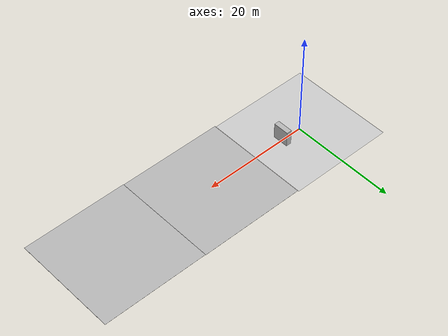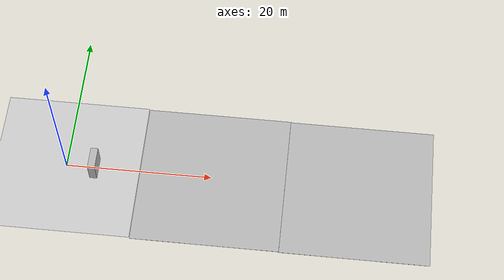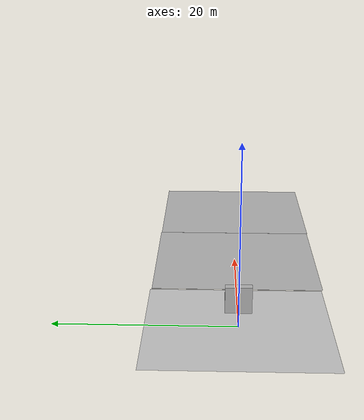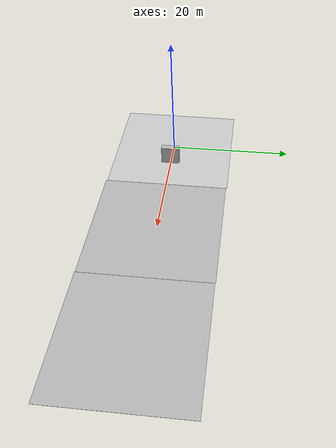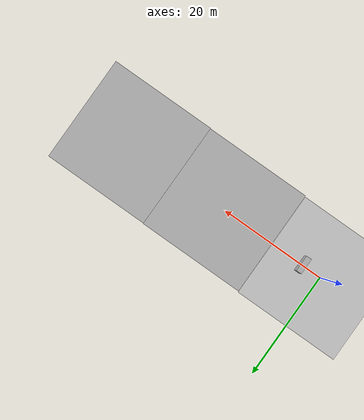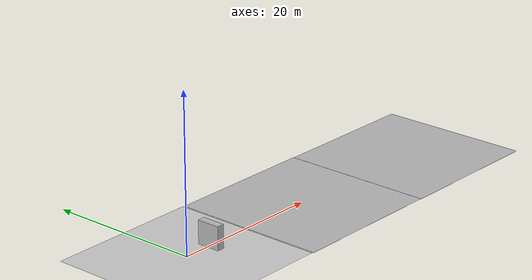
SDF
<sdf version="1.6">
 <world name="default">
  <light name="sun" type="directional">
   <pose>0 0 10 0 -0 0</pose>
   <diffuse>0.8 0.8 0.8 1</diffuse>
   <specular>0.2 0.2 0.2 1</specular>
   <attenuation>
    <range>1000</range>
    <constant>0.9</constant>
    <linear>0.01</linear>
    <quadratic>0.001</quadratic>
   </attenuation>
   <direction>-0.5 0.1 -0.9</direction>
  </light>
  <gravity>0 0 -9.8</gravity>
  <magnetic_field>6e-06 2.3e-05 -4.2e-05</magnetic_field>
  <atmosphere type="adiabatic"/>
  <physics name="default_physics" default="0" type="ode">
   <max_step_size>0.001</max_step_size>
   <real_time_factor>1</real_time_factor>
   <real_time_update_rate>1000</real_time_update_rate>
  </physics>
  <scene><ambient>0.4 0.4 0.4 1</ambient><background>0.7 0.7 0.7 1</background><shadows>1</shadows></scene>
  <audio><device>default</device></audio>
  <spherical_coordinates>
   <surface_model>EARTH_WGS84</surface_model>
   <latitude_deg>0</latitude_deg>
   <longitude_deg>0</longitude_deg>
   <elevation>0</elevation>
   <heading_deg>0</heading_deg>
  </spherical_coordinates>
  <model name="ground20x60">
   <model name="my_ground_plane">
    <static>1</static>
    <link name="link">
     <collision name="collision">
      <geometry><plane><normal>0 0 1</normal><size>20 20</size></plane></geometry>
      <surface><friction><ode><mu>100</mu><mu2>50</mu2></ode></friction></surface>
     </collision>
     <visual name="visual">
      <cast_shadows>0</cast_shadows>
      <geometry><plane><normal>0 0 1</normal><size>20 20</size></plane></geometry>
      <material>
       <script>
        <uri>model://ground20x20/materials/scripts</uri>
        <uri>model://ground20x20/materials/textures</uri>
        <name>WoodGround/Image</name>
       </script>
      </material>
     </visual>
    </link>
    <pose>-20.0603 0.142959 0 0 -0 0</pose>
   </model>
   <model name="my_ground_plane_0">
    <static>1</static>
    <link name="link">
     <collision name="collision">
      <geometry><plane><normal>0 0 1</normal><size>20 20</size></plane></geometry>
      <surface><friction><ode><mu>100</mu><mu2>50</mu2></ode></friction></surface>
     </collision>
     <visual name="visual">
      <cast_shadows>0</cast_shadows>
      <geometry><plane><normal>0 0 1</normal><size>20 20</size></plane></geometry>
      <material>
       <script>
        <uri>model://ground20x20/materials/scripts</uri>
        <uri>model://ground20x20/materials/textures</uri>
        <name>WoodGround/Image</name>
       </script>
      </material>
     </visual>
    </link>
    <pose>0.026452 -0.032681 0 0 -0 0</pose>
   </model>
   <model name="my_ground_plane_1">
    <static>1</static>
    <link name="link">
     <collision name="collision">
      <geometry><plane><normal>0 0 1</normal><size>20 20</size></plane></geometry>
      <surface><friction><ode><mu>100</mu><mu2>50</mu2></ode></friction></surface>
     </collision>
     <visual name="visual">
      <cast_shadows>0</cast_shadows>
      <geometry><plane><normal>0 0 1</normal><size>20 20</size></plane></geometry>
      <material>
       <script>
        <uri>model://ground20x20/materials/scripts</uri>
        <uri>model://ground20x20/materials/textures</uri>
        <name>WoodGround/Image</name>
       </script>
      </material>
     </visual>
    </link>
    <pose>20.0339 -0.110278 0 0 -0 0</pose>
   </model>
   <static>0</static>
   <pose>20.1149 -0.064726 0 0 -0 0</pose>
  </model>
  <model name="brick_box_3x1x3">
   <static>1</static>
   <link name="chassis">
    <pose>0 0 1.5 0 -0 0</pose>
    <collision name="collision"><geometry><box><size>3 1 3</size></box></geometry></collision>
    <visual name="visual">
     <geometry><mesh><uri>model://brick_box_3x1x3/meshes/simple_box.dae</uri><scale>3 1 3</scale></mesh></geometry>
     <material>
      <script>
       <uri>model://brick_box_3x1x3/materials/scripts</uri>
       <uri>model://brick_box_3x1x3/materials/textures</uri>
       <name>BrickBox/Diffuse</name>
      </script>
     </material>
    </visual>
   </link>
   <pose>3.92162 -0.08953 0 0 0 -1.57167</pose>
  </model>
 </world>
</sdf>
